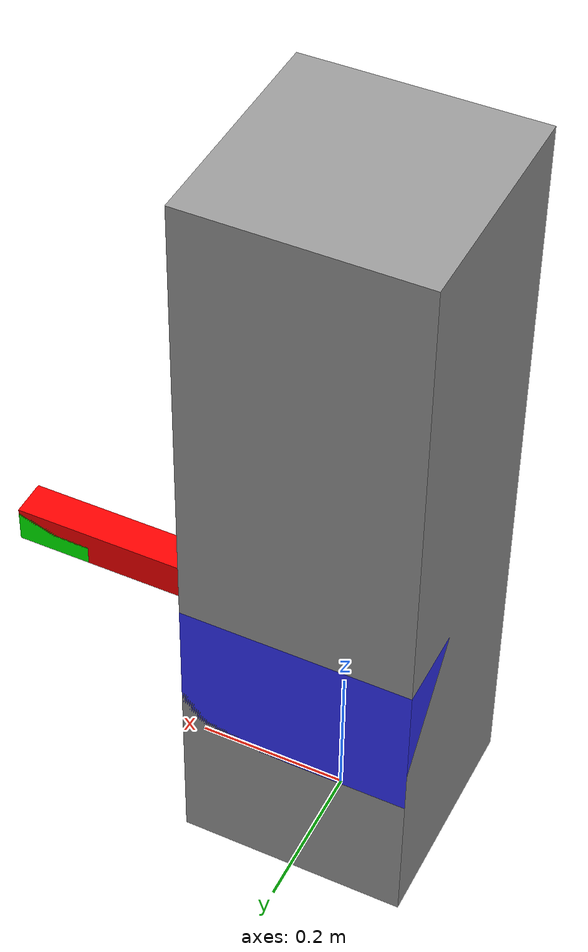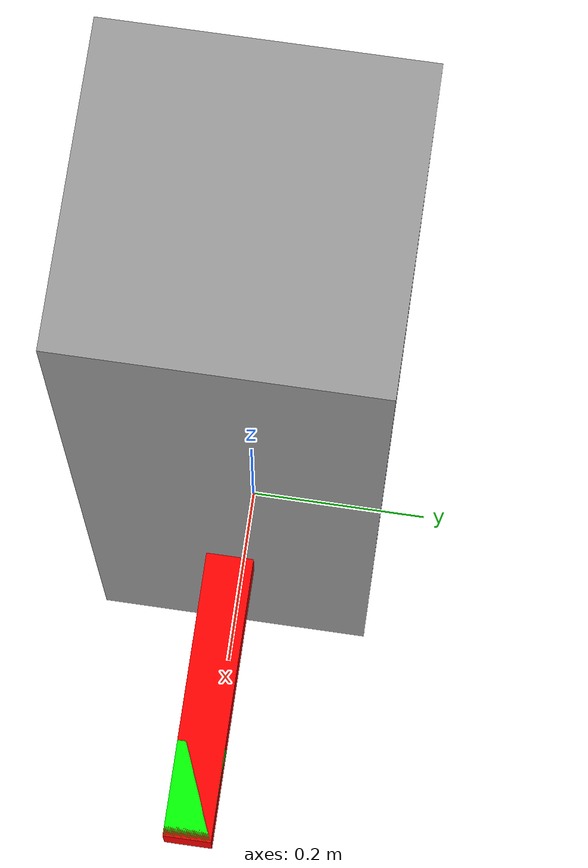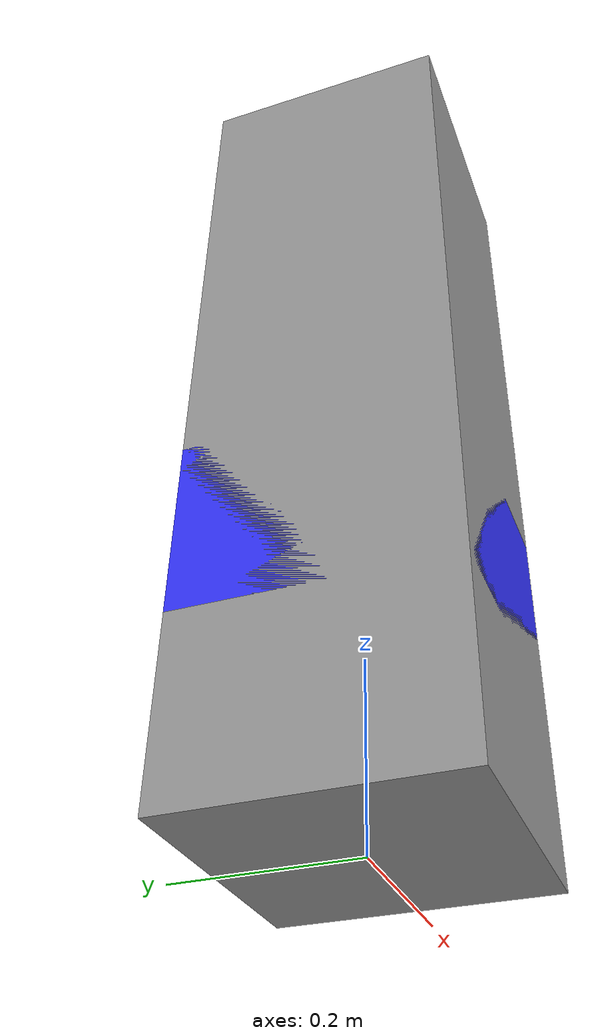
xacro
<?xml version="1.0"?>
<robot name="sketch_bot" xmlns:xacro="http://ros.org/wiki/xacro">

  <!-- Base -->
  <link name="base_link">
    <visual>
      <origin xyz="0 0 0.5" rpy="0 0 0"/>
      <geometry>
        <box size="0.3 0.3 1.0"/>
      </geometry>
      <material name="gray"><color rgba="0.6 0.6 0.6 1.0"/></material>
    </visual>
  </link>

  <!-- Sliding unit (vertical movement) -->
  <link name="slider">
    <visual>
      <origin xyz="0 0 0.1" rpy="0 0 0"/>
      <geometry>
        <box size="0.3 0.3 0.2"/>
      </geometry>
      <material name="blue"><color rgba="0.2 0.2 1.0 1.0"/></material>
    </visual>
  </link>

  <joint name="slider_joint" type="prismatic">
    <parent link="base_link"/>
    <child link="slider"/>
    <origin xyz="0 0 0.2" rpy="0 0 0"/>
    <axis xyz="0 0 1"/>
    <limit lower="0.0" upper="0.6" effort="10" velocity="0.5"/>
  </joint>

  <!-- Red arm that rotates like a drill -->
  <link name="arm">
    <visual>
      <origin xyz="0.15 0 0" rpy="0 0 0"/>
      <geometry>
        <box size="0.3 0.05 0.05"/>
      </geometry>
      <material name="red"><color rgba="1 0 0 1"/></material>
    </visual>
  </link>

  <!-- Drill-like rotation around its own axis -->
  <joint name="arm_joint" type="continuous">
    <parent link="slider"/>
    <child link="arm"/>
    <origin xyz="0.15 0 0.1" rpy="0 0 0"/>
    <axis xyz="1 0 0"/>
  </joint>

  <!-- Gripper -->
  <link name="gripper">
    <visual>
      <origin xyz="0.1 0 0" rpy="0 0 0"/>
      <geometry>
        <box size="0.1 0.05 0.05"/>
      </geometry>
      <material name="green"><color rgba="0 1 0 1"/></material>
    </visual>
  </link>

  <joint name="gripper_joint" type="fixed">
    <parent link="arm"/>
    <child link="gripper"/>
    <origin xyz="0.15 0 0" rpy="0 0 0"/>
  </joint>

</robot>
